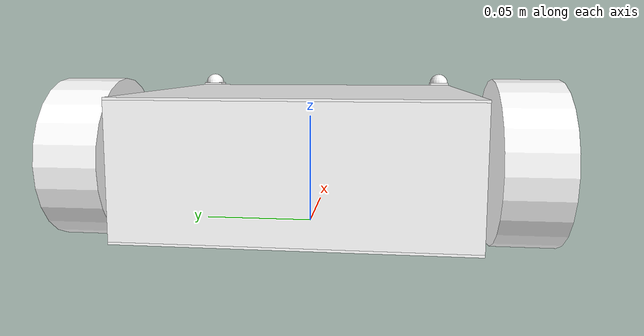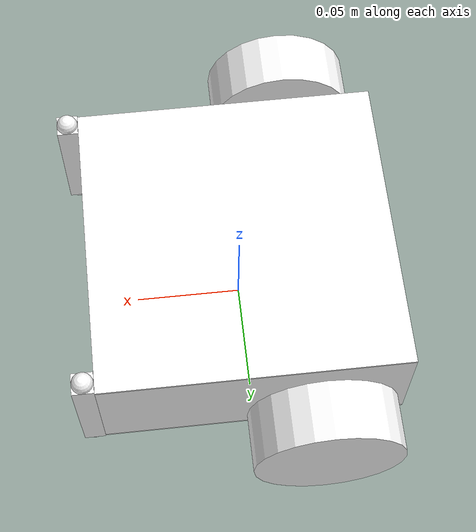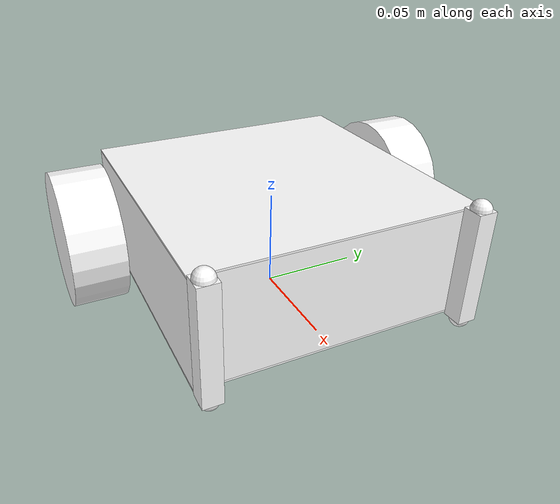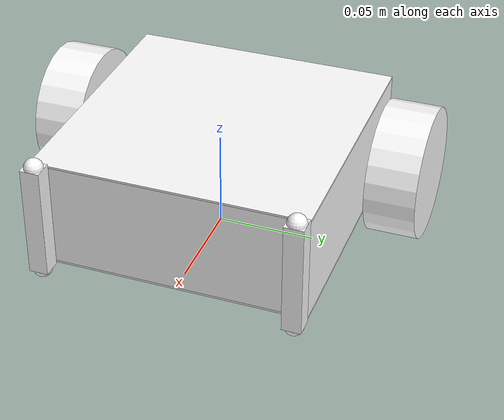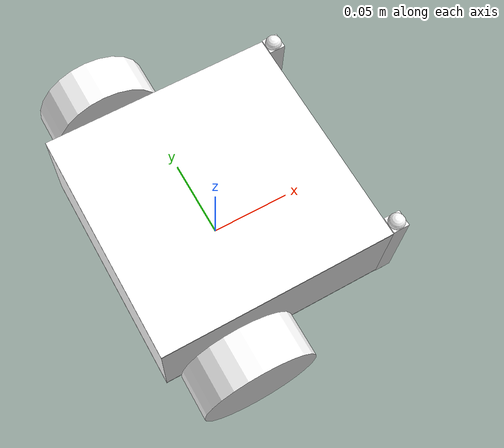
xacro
<?xml version="1.0"?>

<robot name="my_robot" xmlns:xacro="http://www.ros.org/wiki/xacro">

    <!--   Geometry and constants   -->
    <xacro:arg name="prefix" default="" />

    <!-- Pi -->
    <xacro:property name="pi_const" value="3.14159265" />

    <!-- Body Dimensions -->
    <xacro:property name="a" value="0.140" />
    <xacro:property name="b" value="0.054" />
    <xacro:property name="c" value="0.14" />

    <!-- Wheel and caster radius -->
    <xacro:property name="r" value="0.034" />

    <!-- Wheel width -->
    <xacro:property name="d" value="0.026" />

    <!-- Wheel Offset to chassis in Y axis -->
    <xacro:property name="e" value="0.00675" />

    <xacro:property name="s1" value="${r}" />
    <xacro:property name="s2" value="${a/2.0-0.04075}" />
    <xacro:property name="s3" value="${a+r}" />
    <xacro:property name="s4" value="${c/2.0+d/2+e}" />

    <!-- Upright support box dimensions (replacing cylinder) -->
    <xacro:property name="f" value="0.0049"/>
    <xacro:property name="support_width" value="${2*f}" />
    <xacro:property name="support_height" value="${2*r-2*f}" />

    <!--      Mass and inertia      -->

    <!-- Material Density -->
    <xacro:property name="d1" value="1430.0" />
    <xacro:property name="d2" value="1430.0" />
    <xacro:property name="d3" value="1430.0" />

    <!-- Mass -->
    <xacro:property name="m1" value="${d1*a*b*c}" />
    <xacro:property name="m2" value="${d2*pi_const*r*r*d}" />
    <!-- Updated mass calculation for box support -->
    <xacro:property name="m3" value="${d3*support_width*support_width*support_height}" />

    <!-- Inertia -->
    <xacro:property name="Ix_body" value="${(1.0/12.0)*m1*(b*b+c*c)}" />
    <xacro:property name="Iy_body" value="${(1.0/12.0)*m1*(a*a+b*b)}" />
    <xacro:property name="Iz_body" value="${(1.0/12.0)*m1*(a*a+c*c)}" />
    <xacro:property name="Iz_wheel" value="${0.5*m2*r*r}" />
    <xacro:property name="I_wheel" value="${(1.0/12.0)*m2*(3.0*r*r+d*d)}" />
    <!-- Updated inertia for box support -->
    <xacro:property name="I_support_x" value="${(1.0/12.0)*m3*(support_width*support_width + support_height*support_height)}" />
    <xacro:property name="I_support_y" value="${(1.0/12.0)*m3*(support_width*support_width + support_height*support_height)}" />
    <xacro:property name="I_support_z" value="${(1.0/12.0)*m3*(support_width*support_width + support_width*support_width)}" />

    <!-- AprilTag properties -->
    <xacro:property name="tag_size" value="0.14" />
    <xacro:property name="tag_thickness" value="0.001" />
    <xacro:property name="tag_mass" value="0.01" />

    <!-- Complete inertia macros -->
    <xacro:macro name="inertia_body">
        <inertial>
            <origin rpy="0 0 0" xyz="0 0 ${s1}"/>
            <mass value="${m1}"/>
            <inertia ixx="${Ix_body}" ixy="0.0" ixz="0.0" iyy="${Iy_body}" iyz="0.0" izz="${Iz_body}" />
        </inertial>
    </xacro:macro>

    <xacro:macro name="inertia_wheel">
        <inertial>
            <origin rpy="${pi_const/2.0} 0 0" xyz="0 0 0"/>
            <mass value="${m2}"/>
            <inertia ixx="${I_wheel}" ixy="0.0" ixz="0.0" iyy="${I_wheel}" iyz="0.0" izz="${Iz_wheel}" />
        </inertial>
    </xacro:macro>

    <xacro:macro name="inertia_support">
        <inertial>
            <origin rpy="0 0 0" xyz="0 0 0"/>
            <mass value="${m3}"/>
            <inertia ixx="${I_support_x}" ixy="0.0" ixz="0.0" iyy="${I_support_y}" iyz="0.0" izz="${I_support_z}" />
        </inertial>
    </xacro:macro>

    <xacro:macro name="inertia_tag">
        <inertial>
            <origin rpy="0 0 0" xyz="0 0 0"/>
            <mass value="${tag_mass}"/>
            <inertia ixx="${(1.0/12.0)*tag_mass*(tag_size*tag_size + tag_thickness*tag_thickness)}"
                     ixy="0.0" ixz="0.0"
                     iyy="${(1.0/12.0)*tag_mass*(tag_size*tag_size + tag_thickness*tag_thickness)}"
                     iyz="0.0"
                     izz="${(1.0/12.0)*tag_mass*(tag_size*tag_size + tag_size*tag_size)}" />
        </inertial>
    </xacro:macro>

    <!-- Include gazebo file -->
    <xacro:include filename="$(find robofetz_gazebo)/models/simple_diff_drive_robot/simple_diff_drive_robot.gazebo" />

    <!-- Links and joints -->
    <link name="$(arg prefix)base_footprint"> </link>
    <joint name="$(arg prefix)body_link_joint" type="fixed">
        <parent link="$(arg prefix)base_footprint"/>
        <child link="$(arg prefix)body_link"/>
    </joint>

    <link name="$(arg prefix)body_link">
        <visual>
            <geometry><box size="${a} ${c} ${b}" /></geometry>
            <origin rpy="0 0 0" xyz="0 0 ${s1}"/>
            <material name="White"><color rgba="1 1 1 1"/></material>
        </visual>
        <collision>
            <geometry><box size="${a} ${c} ${b}" /></geometry>
            <origin rpy="0 0 0" xyz="0 0 ${s1}"/>
        </collision>
        <xacro:inertia_body/>
    </link>

    <!-- Top AprilTag -->
    <joint name="$(arg prefix)top_tag_joint" type="fixed">
        <parent link="$(arg prefix)body_link"/>
        <child link="$(arg prefix)top_apriltag_link"/>
        <origin xyz="0 0 ${s1 + b/2 + tag_thickness/2}" rpy="0 0 0"/>
    </joint>
    <link name="$(arg prefix)top_apriltag_link">
        <visual>
            <origin rpy="0 0 0" xyz="0 0 0"/>
            <geometry><box size="${tag_size} ${tag_size} ${tag_thickness}"/></geometry>
            <material name="White"><color rgba="1 1 1 1"/></material>
        </visual>
        <collision>
            <origin rpy="0 0 0" xyz="0 0 0"/>
            <geometry><box size="${tag_size} ${tag_size} ${tag_thickness}"/></geometry>
        </collision>
        <xacro:inertia_tag/>
    </link>

    <!-- Bottom AprilTag -->
    <joint name="$(arg prefix)bottom_tag_joint" type="fixed">
        <parent link="$(arg prefix)body_link"/>
        <child link="$(arg prefix)bottom_apriltag_link"/>
        <origin xyz="0 0 ${s1 - b/2 - tag_thickness/2}" rpy="${pi_const} 0 0"/>
    </joint>
    <link name="$(arg prefix)bottom_apriltag_link">
        <visual>
            <origin rpy="0 0 0" xyz="0 0 0"/>
            <geometry><box size="${tag_size} ${tag_size} ${tag_thickness}"/></geometry>
            <material name="White"><color rgba="1 1 1 1"/></material>
        </visual>
        <collision>
            <origin rpy="0 0 0" xyz="0 0 0"/>
            <geometry><box size="${tag_size} ${tag_size} ${tag_thickness}"/></geometry>
        </collision>
        <xacro:inertia_tag/>
    </link>

    <!-- Gazebo PBR for top AprilTag -->
    <gazebo reference="$(arg prefix)top_apriltag_link">
        <kp>1000000.0</kp>
        <kd>100.0</kd>
        <mu1>0.5</mu1>
        <mu2>0.5</mu2>
        <material>Gazebo/White</material>
        <visual name="$(arg prefix)top_apriltag_visual">
            <geometry><box><size>${tag_size} ${tag_size} ${tag_thickness}</size></box></geometry>
            <material>
                <ambient>1 1 1 1</ambient>
                <diffuse>1 1 1 1</diffuse>
                <specular>0.5 0.5 0.5 1</specular>
                <pbr>
                    <metal>
                        <albedo_map>file://$(find robofetz_gazebo)/models/simple_diff_drive_robot/top_apriltag.png</albedo_map>
                        <roughness>0.5</roughness>
                        <metalness>0.0</metalness>
                    </metal>
                </pbr>
            </material>
        </visual>
    </gazebo>

    <!-- Gazebo PBR for bottom AprilTag -->
    <gazebo reference="$(arg prefix)bottom_apriltag_link">
        <kp>1000000.0</kp>
        <kd>100.0</kd>
        <mu1>0.5</mu1>
        <mu2>0.5</mu2>
        <material>Gazebo/White</material>
        <visual name="$(arg prefix)bottom_apriltag_visual">
            <geometry><box><size>${tag_size} ${tag_size} ${tag_thickness}</size></box></geometry>
            <material>
                <ambient>1 1 1 1</ambient>
                <diffuse>1 1 1 1</diffuse>
                <specular>0.5 0.5 0.5 1</specular>
                <pbr>
                    <metal>
                        <albedo_map>file://$(find robofetz_gazebo)/models/simple_diff_drive_robot/bottom_apriltag.png</albedo_map>
                        <roughness>0.5</roughness>
                        <metalness>0.0</metalness>
                    </metal>
                </pbr>
            </material>
        </visual>
    </gazebo>

    <!-- Wheels -->
    <joint name="$(arg prefix)wheel1_joint" type="continuous">
        <parent link="$(arg prefix)body_link"/>
        <child link="$(arg prefix)wheel1_link"/>
        <origin xyz="${-s2} ${-s4} ${r}" rpy="0 0 0"/>
        <axis xyz="0 1 0"/>
        <limit effort="50000" velocity="10"/>
        <dynamics damping="1.0" friction="1.0"/>
    </joint>
    <link name="$(arg prefix)wheel1_link">
        <visual>
            <origin rpy="${pi_const/2} 0 0" xyz="0 0 0"/>
            <geometry><cylinder length="${d}" radius="${r}"/></geometry>
            <material name="White"><color rgba="1 1 1 1"/></material>
        </visual>
        <collision>
            <origin rpy="${pi_const/2} 0 0" xyz="0 0 0"/>
            <geometry><cylinder length="${d}" radius="${r}"/></geometry>
        </collision>
        <xacro:inertia_wheel/>
    </link>

    <joint name="$(arg prefix)wheel2_joint" type="continuous">
        <parent link="$(arg prefix)body_link"/>
        <child link="$(arg prefix)wheel2_link"/>
        <origin xyz="${-s2} ${s4} ${r}" rpy="0 0 0"/>
        <axis xyz="0 1 0"/>
        <limit effort="50000" velocity="10"/>
        <dynamics damping="1.0" friction="1.0"/>
    </joint>
    <link name="$(arg prefix)wheel2_link">
        <visual>
            <origin rpy="${pi_const/2} 0 0" xyz="0 0 0"/>
            <geometry><cylinder length="${d}" radius="${r}"/></geometry>
            <material name="White"><color rgba="1 1 1 1"/></material>
        </visual>
        <collision>
            <origin rpy="${pi_const/2} 0 0" xyz="0 0 0"/>
            <geometry><cylinder length="${d}" radius="${r}"/></geometry>
        </collision>
        <xacro:inertia_wheel/>
    </link>

    <!-- Two upright boxes with top/bottom casters -->
    <xacro:macro name="upright_with_casters" params="name y_offset">
        <!-- Upright box -->
        <joint name="$(arg prefix)${name}_joint" type="fixed">
            <parent link="$(arg prefix)body_link"/>
            <child link="$(arg prefix)${name}_link"/>
            <origin xyz="${a/2+f} ${y_offset} ${r}" rpy="0 0 0"/>
        </joint>
        <link name="$(arg prefix)${name}_link">
            <visual>
                <origin rpy="0 0 0"/>
                <geometry><box size="${support_width} ${support_width} ${support_height}"/></geometry>
                <material name="White"><color rgba="1 1 1 1"/></material>
            </visual>
            <collision>
                <origin rpy="0 0 0"/>
                <geometry><box size="${support_width} ${support_width} ${support_height}"/></geometry>
            </collision>
            <xacro:inertia_support/>
        </link>

        <!-- Top caster -->
        <joint name="$(arg prefix)${name}_top_caster_joint" type="fixed">
            <parent link="$(arg prefix)${name}_link"/>
            <child link="$(arg prefix)${name}_top_caster_link"/>
            <origin xyz="0 0 ${support_height/2}" rpy="0 0 0"/>
        </joint>
        <link name="$(arg prefix)${name}_top_caster_link">
            <visual>
                <origin rpy="0 0 0"/>
                <geometry><sphere radius="${f}"/></geometry>
                <material name="White"><color rgba="1 1 1 1"/></material>
            </visual>
            <collision>
                <origin rpy="0 0 0"/>
                <geometry><sphere radius="${f}"/></geometry>
            </collision>
            <xacro:inertia_support/>
        </link>

        <!-- Bottom caster -->
        <joint name="$(arg prefix)${name}_bottom_caster_joint" type="fixed">
            <parent link="$(arg prefix)${name}_link"/>
            <child link="$(arg prefix)${name}_bottom_caster_link"/>
            <origin xyz="0 0 ${-support_height/2}" rpy="0 0 0"/>
        </joint>
        <link name="$(arg prefix)${name}_bottom_caster_link">
            <visual>
                <origin rpy="0 0 0"/>
                <geometry><sphere radius="${f}"/></geometry>
                <material name="White"><color rgba="1 1 1 1"/></material>
            </visual>
            <collision>
                <origin rpy="0 0 0"/>
                <geometry><sphere radius="${f}"/></geometry>
            </collision>
            <xacro:inertia_support/>
        </link>
    </xacro:macro>

    <xacro:upright_with_casters name="front_left_support" y_offset="${c/2 - f}"/>
    <xacro:upright_with_casters name="front_right_support" y_offset="${-c/2 + f}"/>

</robot>
